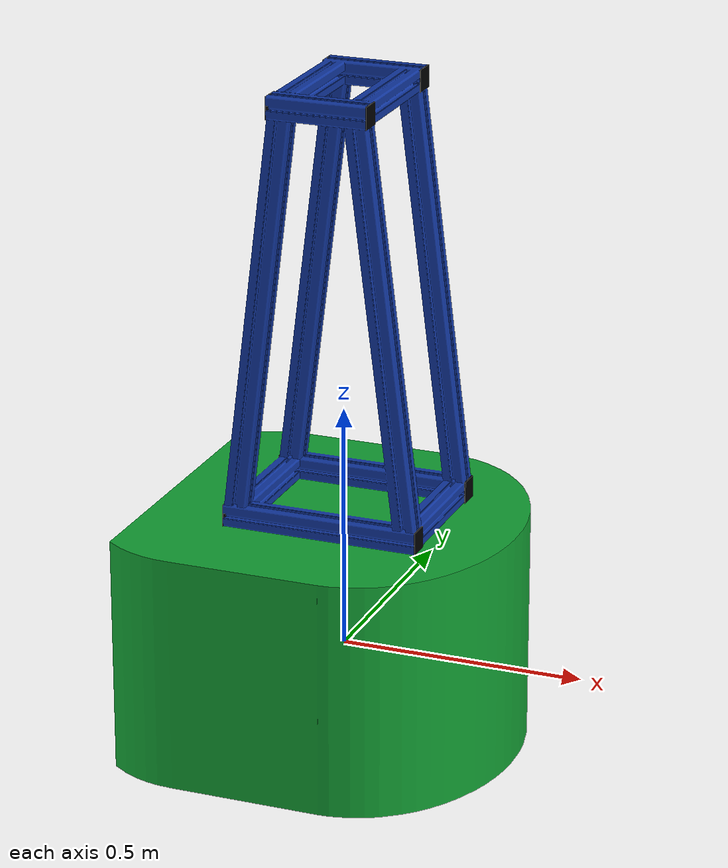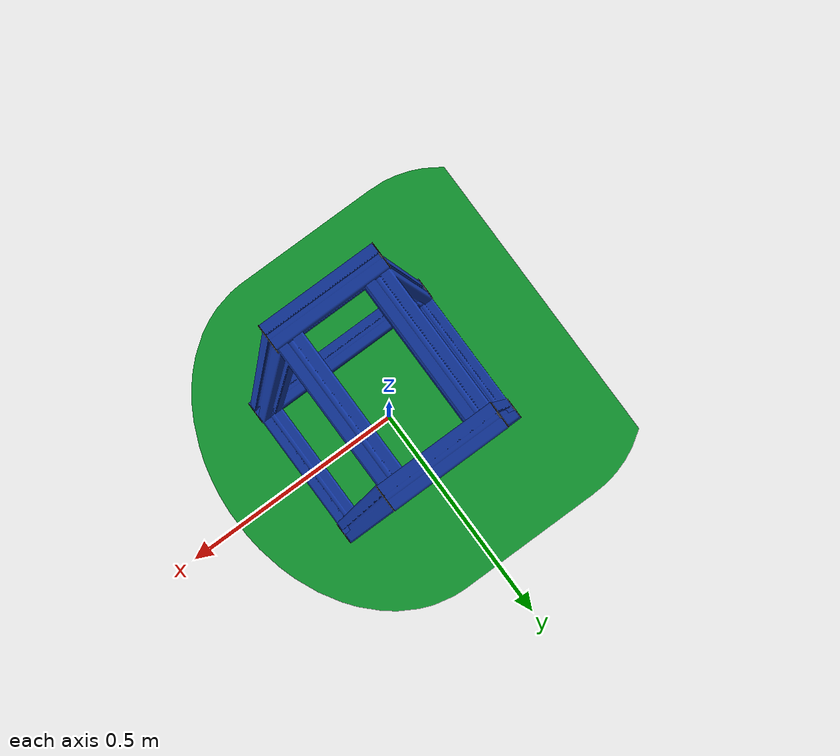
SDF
<?xml version="1.0"?>
<sdf version="1.4">
<model name="mild">

    <link name="base_link">
      <pose>0 0 0 0 0 0</pose>
      <inertial>
        <mass>5.67</mass>
        <inertia>
          <ixx>0.07</ixx>
          <iyy>0.08</iyy>
          <izz>0.10</izz>
          <ixy>0</ixy>
          <ixz>0</ixz>
          <iyz>0</iyz>
        </inertia>
      </inertial>
      <collision name="collision">
        <geometry>
         <cylinder>
            <radius>0.38</radius>
            <length>0.485</length>
          </cylinder>
        </geometry>
      </collision>
      <collision name="castor_collision">
        <pose>-0.200 0 -0.12 0 0 0</pose>
        <geometry>
          <sphere>
            <radius>0.04</radius>
          </sphere>
        </geometry>
        <surface>
          <friction>
            <ode>
              <mu>0</mu>
              <mu2>0</mu2>
              <slip1>1.0</slip1>
              <slip2>1.0</slip2>
            </ode>
          </friction>
        </surface>
      </collision>
      <visual name="visual">
        <pose>0 0 -0.2 0 0 -1.570796327</pose>
        <geometry>
        <mesh>
            <uri>model://mild/meshes/mild.dae</uri>
          </mesh>
        </geometry>
      </visual>
     <sensor name="laser" type="ray">
        <pose>0.39 0 -0.12 0 0 0</pose>
        <visualize>1</visualize>
        <ray>
          <scan>
            <horizontal>
              <samples>180</samples>
              <resolution>1.000000</resolution>
              <min_angle>-1.570796327</min_angle>
              <max_angle>1.570796327</max_angle>
            </horizontal>
          </scan>
          <range>
            <min>0.080000</min>
            <max>10</max>
            <resolution>0.010000</resolution>
          </range>
        </ray>

        <plugin name='laser_controller' filename='libgazebo_ros_laser.so'>
          <gaussianNoise>0.005</gaussianNoise>
          <alwaysOn>1</alwaysOn>
          <updateRate>20</updateRate>
          <topicName>scan</topicName>
          <frameName>base_laser</frameName>
        </plugin>
        <update_rate>20</update_rate>
      </sensor>
    </link>

</model>
</sdf>
